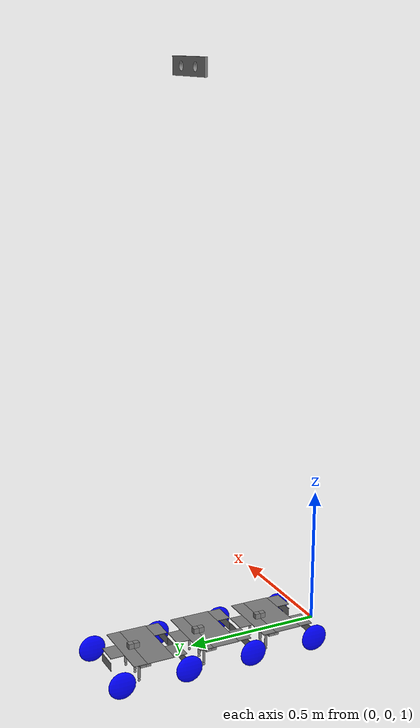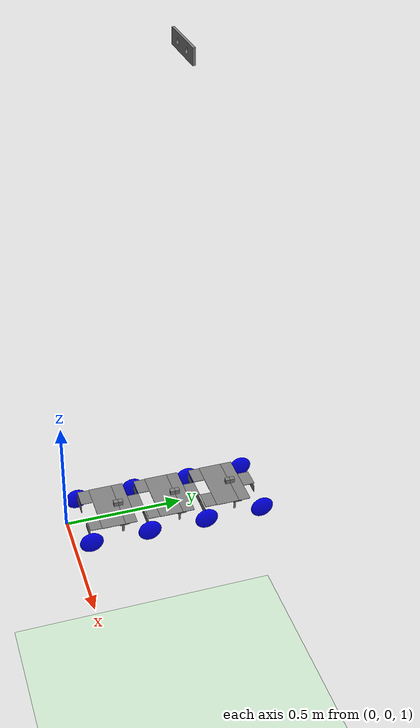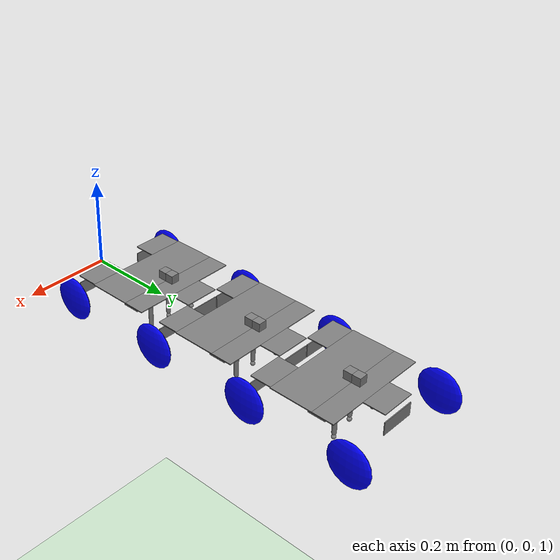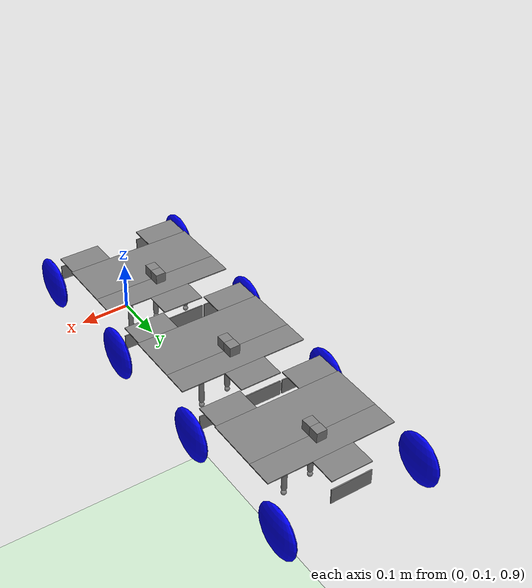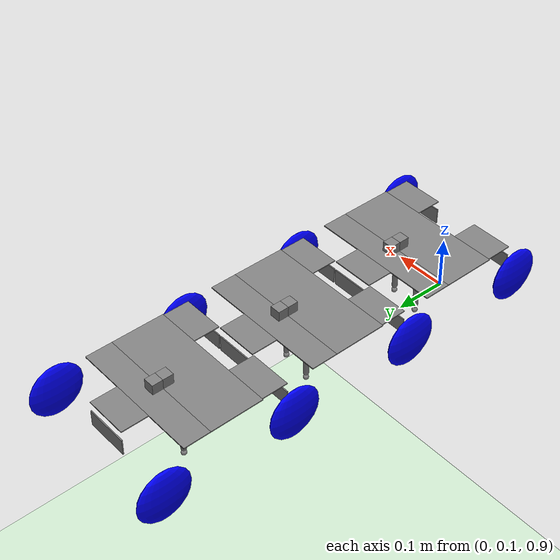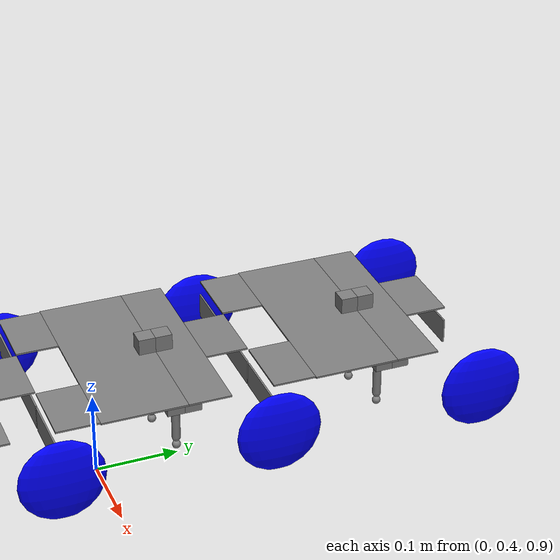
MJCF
<?xml version="1.0" ?>
<mujoco>
    <asset>
        <texture builtin="gradient" height="100" rgb1="1 1 1" rgb2="0 0 0" type="skybox" width="100"/>
        <texture builtin="flat" height="1278" mark="cross" markrgb="1 1 1" name="texgeom" random="0.01" rgb1="0.8 0.6 0.4" rgb2="0.8 0.6 0.4" type="cube" width="127"/>
        <texture builtin="checker" height="100" name="texplane" rgb1="0 0 0" rgb2="0.8 0.8 0.8" type="2d" width="100"/>
        <material name="MatPlane" reflectance="0.5" shininess="1" specular="1" texrepeat="60 60" texture="texplane"/>
        <material name="geom" texture="texgeom" texuniform="true"/>
        <mesh file="joint_socket.stl" name= "joint_socket" scale="0.001 0.001 0.001"></mesh>
    </asset>

    <equality>
        <weld body1="joint_fc_4" body2="joint_bc_3" active="true"></weld>
        <weld body1="joint_fc_3" body2="joint_bc_2" active="true"></weld>
        <weld body1="joint_fc_2" body2="joint_bc_1" active="true"></weld>
    </equality>
    <option timestep="0.001" />
    <size nconmax="150" njmax="700"/>

    <worldbody>
        <light cutoff="100" diffuse="1 1 1" dir="-0 0 -1.3" directional="true" exponent="1" pos="0 0 1.3" specular=".1 .1 .1"/>
        <geom conaffinity="1" condim="3" material="MatPlane" name="floor" pos="0 0 0" rgba="0.8 0.9 0.8 1" size="5 5 0.1" type="plane"/>

        <body pos="0 0 1">
            <joint type="free" name="body_1" />

            <geom type="box" pos="0.083 0.075 0.0175" size="0.04 0.001 0.015"/>
            <geom type="box" pos="-0.083 0.075 0.0175" size="0.04 0.001 0.015"/>
            <geom type="box" pos="0.083 0.1 0.05" size="0.04 0.025 0.001"/>
            <geom type="box" pos="-0.083 0.1 0.05" size="0.04 0.025 0.001"/>
            <geom type="box" pos="0 0.175 0.05" size="0.125 0.05 0.001"/>

            <body name="joint_bc_1">
                <geom type="box" pos="0 0.215 0.06" size="0.01 0.01 0.01"/>
            </body>
            <body name="joint_br_1">
                <geom type="box" pos="0.1 0.215 0.04" size="0.01 0.01 0.01"/>
            </body>
            <body name="joint_bl_1">
                <geom type="box" pos="-0.1 0.215 0.04" size="0.01 0.01 0.01"/>
            </body>

            <body pos="0 0.22 0 ">
                <joint name="support_b_1" type="hinge" axis="1 0 0" pos="0 0 0.04" limited="true" range="-90 0"/>
                <geom type="capsule" size="0.005" fromto="0 0 0.04 0 0 -0.035" />
                <body>
                    <joint pos="0 0 -0.045" type="ball"/>
                    <geom type="sphere" size="0.005" pos="0 0 -0.045"/>
                </body>
            </body>
            <body>
                <joint name="RW1" type="hinge" axis="1 0 0" pos="-0.14 0.075 0"/>
                <geom type="ellipsoid" size="0.01 0.05 0.05" rgba="0 0 1 1" pos="0.14 0.075 0"/>
            </body>
            <body>
                <joint name ="LW1" type="hinge" axis="1 0 0" pos="0.14 0.075 0"/>
                <geom type="ellipsoid" size="0.01 0.05 0.05" rgba="0 0 1 1" pos="-0.14 0.075 0"/>
            </body>
        </body>

        <body pos="0 0.25 1">
            <joint type="free"/>
            <geom type="box" pos="0 0 0.05" size="0.125 0.025 0.001" />

            <body name="joint_fc_2">
                <geom type="box" pos="0 -0.015 0.06" size="0.01 0.01 0.01"/>
            </body>
            <body name="joint_fr_2">
                <geom type="box" pos="0.1 -0.015 0.04" size="0.01 0.01 0.01"/>
            </body>
            <body name="joint_fl_2">
                <geom type="box" pos="-0.1 -0.015 0.04" size="0.01 0.01 0.01"/>
            </body>

            <body pos="0.06 -0.02 0 ">
                <joint name="support_fr_2" type="hinge" axis="1 0 0" pos="0 0 0.04" limited="true" range="-90 0"/>
                <geom type="capsule" size="0.005" fromto="0 0 0.04 0 0 -0.035" />
                <body>
                    <joint pos="0 0 -0.045" type="ball"/>
                    <geom type="sphere" size="0.005" pos="0 0 -0.045"/>
                </body>
            </body>
            <body pos="-0.06 -0.02 0 ">
                <joint name="support_fl_2" type="hinge" axis="1 0 0" pos="0 0 0.04" limited="true" range="-90 0"/>
                <geom type="capsule" size="0.005" fromto="0 0 0.04 0 0 -0.035" />
                <body>
                    <joint pos="0 0 -0.045" type="ball"/>
                    <geom type="sphere" size="0.005" pos="0 0 -0.045"/>
                </body>
            </body>

            <geom type="box" pos="0 0.05 0.05" size="0.04 0.025 0.001"/>
            <geom type="box" pos="0 0.075 0.0175" size="0.04 0.001 0.015"/>
            <body>
                <joint type="hinge" pos="0 0.075 0" axis="1 0 0" springdamper="1.5 0.01" limited="true" range="-90 90" />
                <geom type="box" pos="0.083 0.075 0.0175" size="0.04 0.001 0.015"/>
                <geom type="box" pos="-0.083 0.075 0.0175" size="0.04 0.001 0.015"/>
                <geom type="box" pos="0.083 0.1 0.05" size="0.04 0.025 0.001"/>
                <geom type="box" pos="-0.083 0.1 0.05" size="0.04 0.025 0.001"/>
                <geom type="box" pos="0 0.175 0.05" size="0.125 0.05 0.001"/>

                <body name="joint_bc_2">
                    <geom type="box" pos="0 0.215 0.06" size="0.01 0.01 0.01"/>
                </body>#     # sim.model.eq_active[:]=True
    # if t*0.01 == 3:
    #     # sim.data.ctrl[:] = 0.001
    #     sim.data.set_joint_qpos("body_1",[0, 0, 0, 1, 0, 0, 0])
    # if t*0.01 == 6:
    #     # sim.data.ctrl[:] = -0.001
    #     sim.data.set_joint_qpos("body_1",[1, 0, 0, 1, 0, 0, 0])

    # x = sim.data.get_joint_qpos("body_1")
    # print(x)
    # if t*0.01 == 300:
    #     break
                <body name="joint_br_2">
                    <geom type="box" pos="0.1 0.215 0.04" size="0.01 0.01 0.01"/>
                </body>
                <body name="joint_bl_2">
                    <geom type="box" pos="-0.1 0.215 0.04" size="0.01 0.01 0.01"/>
                </body>

                <body pos="0 0.22 0 ">
                    <joint name="support_b_2" type="hinge" axis="1 0 0" pos="0 0 0.04" limited="true" range="-90 0"/>
                    <geom type="capsule" size="0.005" fromto="0 0 0.04 0 0 -0.035" />
                    <body>
                        <joint pos="0 0 -0.045" type="ball"/>
                        <geom type="sphere" size="0.005" pos="0 0 -0.045"/>
                    </body>
                </body>
            </body>
            <body>
                <joint name="RW2" type="hinge" axis="1 0 0" pos="-0.14 0.075 0"/>
                <geom type="ellipsoid" size="0.01 0.05 0.05" rgba="0 0 1 1" pos="0.14 0.075 0"/>
            </body>
            <body>
                <joint name ="LW2" type="hinge" axis="1 0 0" pos="0.14 0.075 0"/>
                <geom type="ellipsoid" size="0.01 0.05 0.05" rgba="0 0 1 1" pos="-0.14 0.075 0"/>
            </body>
        </body>

        <body pos="0 0.5 1">
            <joint type="free"/>
            <geom type="box" pos="0 0 0.05" size="0.125 0.025 0.001" />

            <body name="joint_fc_3">
                <geom type="box" pos="0 -0.015 0.06" size="0.01 0.01 0.01"/>
            </body>
            <body name="joint_fr_3">
                <geom type="box" pos="0.1 -0.015 0.04" size="0.01 0.01 0.01"/>
            </body>
            <body name="joint_fl_3">
                <geom type="box" pos="-0.1 -0.015 0.04" size="0.01 0.01 0.01"/>
            </body>

            <body pos="0.06 -0.02 0 ">
                <joint name="support_fr_3" type="hinge" axis="1 0 0" pos="0 0 0.04" limited="true" range="-90 0"/>
                <geom type="capsule" size="0.005" fromto="0 0 0.04 0 0 -0.035" />
                <body>
                    <joint pos="0 0 -0.045" type="ball"/>
                    <geom type="sphere" size="0.005" pos="0 0 -0.045"/>
                </body>
            </body>
            <body pos="-0.06 -0.02 0 ">
                <joint name="support_fl_3" type="hinge" axis="1 0 0" pos="0 0 0.04" limited="true" range="-90 0"/>
                <geom type="capsule" size="0.005" fromto="0 0 0.04 0 0 -0.035" />
                <body>
                    <joint pos="0 0 -0.045" type="ball"/>
                    <geom type="sphere" size="0.005" pos="0 0 -0.045"/>
                </body>
            </body>

            <geom type="box" pos="0 0.05 0.05" size="0.04 0.025 0.001"/>
            <geom type="box" pos="0 0.075 0.0175" size="0.04 0.001 0.015"/>
            <body>
                <joint type="hinge" pos="0 0.075 0" axis="1 0 0" springdamper="1.5 0.01" limited="true" range="-90 90" />
                <geom type="box" pos="0.083 0.075 0.0175" size="0.04 0.001 0.015"/>
                <geom type="box" pos="-0.083 0.075 0.0175" size="0.04 0.001 0.015"/>
                <geom type="box" pos="0.083 0.1 0.05" size="0.04 0.025 0.001"/>
                <geom type="box" pos="-0.083 0.1 0.05" size="0.04 0.025 0.001"/>
                <geom type="box" pos="0 0.175 0.05" size="0.125 0.05 0.001"/>

                <body name="joint_bc_3">
                    <geom type="box" pos="0 0.215 0.06" size="0.01 0.01 0.01"/>
                </body>
                <body name="joint_br_3">
                    <geom type="box" pos="0.1 0.215 0.04" size="0.01 0.01 0.01"/>
                </body>
                <body name="joint_bl_3">
                    <geom type="box" pos="-0.1 0.215 0.04" size="0.01 0.01 0.01"/>
                </body>

                <geom type="mesh" mesh="joint_socket" pos="0 0 2"/>
                <body pos="0 0.22 0 ">
                    <joint name="support_b_3" type="hinge" axis="1 0 0" pos="0 0 0.04" limited="true" range="-90 0"/>
                    <geom type="capsule" size="0.005" fromto="0 0 0.04 0 0 -0.035" />
                    <body>
                        <joint pos="0 0 -0.045" type="ball"/>
                        <geom type="sphere" size="0.005" pos="0 0 -0.045"/>
                    </body>
                </body>
            </body>
            <body>
                <joint name="RW3" type="hinge" axis="1 0 0" pos="-0.14 0.075 0"/>
                <geom type="ellipsoid" size="0.01 0.05 0.05" rgba="0 0 1 1" pos="0.14 0.075 0"/>
            </body>
            <body>
                <joint name ="LW3" type="hinge" axis="1 0 0" pos="0.14 0.075 0"/>
                <geom type="ellipsoid" size="0.01 0.05 0.05" rgba="0 0 1 1" pos="-0.14 0.075 0"/>
            </body>
        </body>

        <body pos="0 0.75 1">
            <joint type="free"/>
            <geom type="box" pos="0 0 0.05" size="0.125 0.025 0.001" />

            <body name="joint_fc_4">
                <geom type="box" pos="0 -0.015 0.06" size="0.01 0.01 0.01"/>
            </body>
            <body name="joint_fr_4">
                <geom type="box" pos="0.1 -0.015 0.04" size="0.01 0.01 0.01"/>
            </body>
            <body name="joint_fl_4">
                <geom type="box" pos="-0.1 -0.015 0.04" size="0.01 0.01 0.01"/>
            </body>

            <body pos="0.06 -0.02 0 ">
                <joint name="support_fr_4" type="hinge" axis="1 0 0" pos="0 0 0.04" limited="true" range="-90 0"/>
                <geom type="capsule" size="0.005" fromto="0 0 0.04 0 0 -0.035" />
                <body>
                    <joint pos="0 0 -0.045" type="ball"/>
                    <geom type="sphere" size="0.005" pos="0 0 -0.045"/>
                </body>
            </body>
            <body pos="-0.06 -0.02 0 ">
                <joint name="support_fl_4" type="hinge" axis="1 0 0" pos="0 0 0.04" limited="true" range="-90 0"/>
                <geom type="capsule" size="0.005" fromto="0 0 0.04 0 0 -0.035" />
                <body>
                    <joint pos="0 0 -0.045" type="ball"/>
                    <geom type="sphere" size="0.005" pos="0 0 -0.045"/>
                </body>
            </body>

            <geom type="box" pos="0 0.05 0.05" size="0.04 0.025 0.001"/>
            <geom type="box" pos="0 0.075 0.0175" size="0.04 0.001 0.015"/>
            <body>
                <joint name="RW4" type="hinge" axis="1 0 0" pos="-0.14 0.075 0"/>
                <geom type="ellipsoid" size="0.01 0.05 0.05" rgba="0 0 1 1" pos="0.14 0.075 0"/>
            </body>
            <body>
                <joint name ="LW4" type="hinge" axis="1 0 0" pos="0.14 0.075 0"/>
                <geom type="ellipsoid" size="0.01 0.05 0.05" rgba="0 0 1 1" pos="-0.14 0.075 0"/>
            </body>
        </body>

    </worldbody>
    <actuator>
        <motor joint="RW1"/>
        <motor joint="LW1"/>
        <motor joint="RW2"/>
        <motor joint="LW2"/>
        <motor joint="RW3"/>
        <motor joint="LW3"/>
        <motor joint="RW4"/>
        <motor joint="LW4"/>
    </actuator>
</mujoco>
